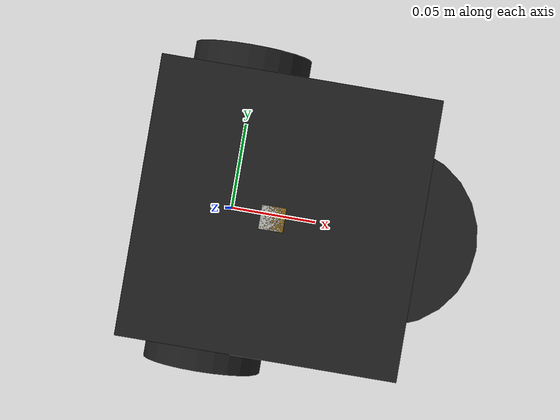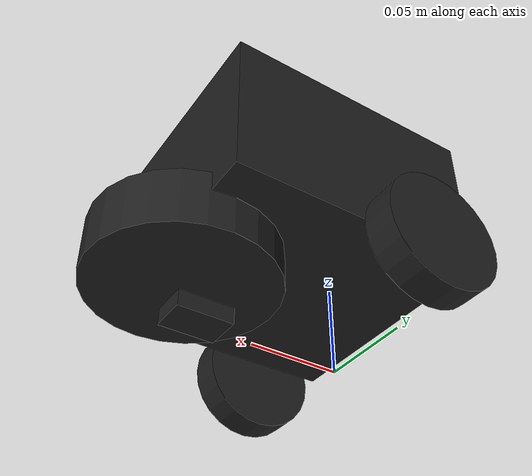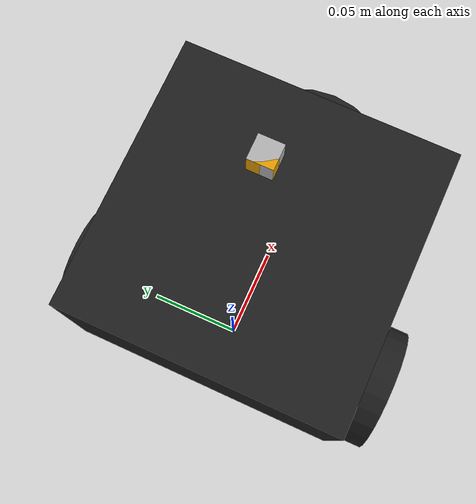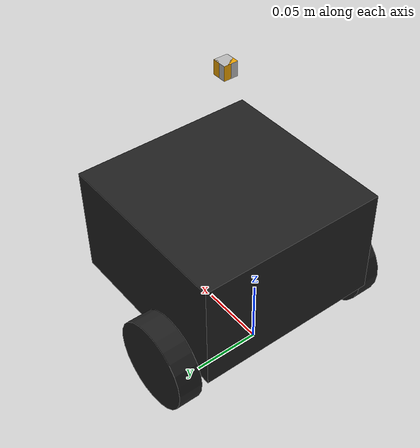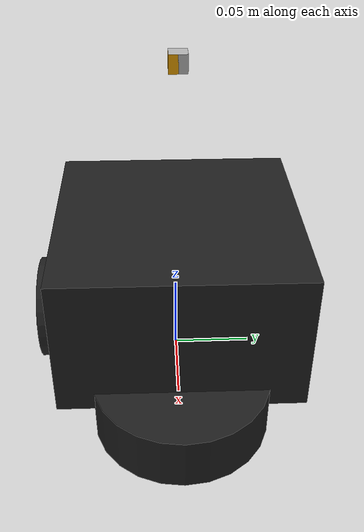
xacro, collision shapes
<?xml version="1.0" ?>
<robot name="turtlebot3_burger" xmlns:xacro="http://ros.org/wiki/xacro">
  <xacro:include filename="$(find turtlebot3_description)/urdf/common_properties.xacro"/>
  <xacro:include filename="$(find turtlebot3_description)/urdf/turtlebot3_burger.gazebo.xacro"/>

  <link name="base_footprint"/>

  <joint name="base_joint" type="fixed">
    <parent link="base_footprint"/>
    <child link="base_link"/>
    <origin xyz="0.0 0.0 0.010" rpy="0 0 -3.14159"/>
  </joint>

  <link name="base_link">
    <visual>
      <origin xyz="-0.032 0 0.0" rpy="0 0 0"/>
      <geometry>
        <mesh filename="package://turtlebot3_description/meshes/bases/burger_base.stl" scale="0.001 0.001 0.001"/>
      </geometry>
      <material name="light_black"/>
    </visual>

    <collision>
      <origin xyz="-0.032 0 0.070" rpy="0 0 0"/>
      <geometry>
        <box size="0.140 0.140 0.083"/>
      </geometry>
    </collision>

    <inertial>
      <origin xyz="0 0 0" rpy="0 0 0"/>
      <mass value="8.2573504e-01"/>
      <inertia ixx="2.2124416e-03" ixy="-1.2294101e-05" ixz="3.4938785e-05"
               iyy="2.1193702e-03" iyz="-5.0120904e-06"
               izz="2.0064271e-03" />
    </inertial>
  </link>

  <joint name="wheel_right_joint" type="continuous">
    <parent link="base_link"/>
    <child link="wheel_left_link"/>
    <origin xyz="0.0 0.08 0.023" rpy="-1.57 0 -3.14159"/>
    <axis xyz="0 0 1"/>
  </joint>

  <link name="wheel_right_link">
    <visual>
      <origin xyz="0 0 0" rpy="1.57 0 0"/>
      <geometry>
        <mesh filename="package://turtlebot3_description/meshes/wheels/left_tire.stl" scale="0.001 0.001 0.001"/>
      </geometry>
      <material name="dark"/>
    </visual>

    <collision>
      <origin xyz="0 0 0" rpy="0 0 0"/>
      <geometry>
        <cylinder length="0.018" radius="0.033"/>
      </geometry>
    </collision>

    <inertial>
      <origin xyz="0 0 0" />
      <mass value="2.8498940e-02" />
      <inertia ixx="1.1175580e-05" ixy="-4.2369783e-11" ixz="-5.9381719e-09"
               iyy="1.1192413e-05" iyz="-1.4400107e-11"
               izz="2.0712558e-05" />
      </inertial>
  </link>

  <joint name="wheel_left_joint" type="continuous">
    <parent link="base_link"/>
    <child link="wheel_right_link"/>
    <origin xyz="0.0 -0.080 0.023" rpy="-1.57 0 -3.14159"/>
    <axis xyz="0 0 1"/>
  </joint>

  <link name="wheel_left_link">
    <visual>
      <origin xyz="0 0 0" rpy="1.57 0 0"/>
      <geometry>
        <mesh filename="package://turtlebot3_description/meshes/wheels/right_tire.stl" scale="0.001 0.001 0.001"/>
      </geometry>
      <material name="dark"/>
    </visual>

    <collision>
      <origin xyz="0 0 0" rpy="0 0 0"/>
      <geometry>
        <cylinder length="0.018" radius="0.033"/>
      </geometry>
    </collision>

    <inertial>
      <origin xyz="0 0 0" />
      <mass value="2.8498940e-02" />
      <inertia ixx="1.1175580e-05" ixy="-4.2369783e-11" ixz="-5.9381719e-09"
               iyy="1.1192413e-05" iyz="-1.4400107e-11"
               izz="2.0712558e-05" />
      </inertial>
  </link>

  <joint name="caster_back_joint" type="fixed">
    <parent link="base_link"/>
    <child link="caster_back_link"/>
    <origin xyz="-0.081 0 -0.004" rpy="-1.57 0 -3.14159"/>
  </joint>

  <link name="caster_back_link">
    <collision>
      <origin xyz="0 0.001 0" rpy="0 0 0"/>
      <geometry>
        <box size="0.030 0.009 0.020"/>
      </geometry>
    </collision>

    <inertial>
      <origin xyz="0 0 0" />
      <mass value="0.005" />
      <inertia ixx="0.001" ixy="0.0" ixz="0.0"
               iyy="0.001" iyz="0.0"
               izz="0.001" />
    </inertial>
  </link>

  <joint name="imu_joint" type="fixed">
    <parent link="base_link"/>
    <child link="imu_link"/>
    <origin xyz="-0.032 0 0.068" rpy="0 0 -3.14159"/>
  </joint>

  <link name="imu_link"/>

  <joint name="scan_joint" type="fixed">
    <parent link="base_link"/>
    <child link="base_scan"/>
    <origin xyz="-0.1 0 0.03" rpy="0 0 -3.14159"/>
  </joint>

  <link name="base_scan">
    <visual>
      <origin xyz="0 0 0.0" rpy="0 0 -3.14159"/>
      <geometry>
        <mesh filename="package://turtlebot3_description/meshes/sensors/lds.stl" scale="0.001 0.001 0.001"/>
      </geometry>
      <material name="dark"/>
    </visual>

    <collision>
      <origin xyz="-0.01 0 -0.0065" rpy="0 0 -3.14159"/>
      <geometry>
        <cylinder length="0.0315" radius="0.05"/>
      </geometry>
    </collision>

    <inertial>
      <mass value="0.114" />
      <origin xyz="0 0 0" />
      <inertia ixx="0.001" ixy="0.0" ixz="0.0"
               iyy="0.001" iyz="0.0"
               izz="0.001" />
    </inertial>
  </link>

  <joint name="camera_joint" type="fixed">
    <parent link="base_link"/>
    <child link="base_camera"/>
    <origin xyz="-0.032 0 0.2" rpy="0 0 4.7124"/>
  </joint>

  <link name="base_camera">
    <collision>
      <origin xyz="0 0 0" rpy="0 0 0"/>
      <geometry>
        <box size="0.01 0.01 0.01"/>
      </geometry>
    </collision>

    <inertial>
      <mass value="0.114" />
      <origin xyz="0 0 0" />
      <inertia ixx="0.001" ixy="0.0" ixz="0.0"
               iyy="0.001" iyz="0.0"
               izz="0.001" />
    </inertial>
  </link>

  <joint name="camera_joint2" type="fixed">
    <parent link="base_link"/>
    <child link="base_camera2"/>
    <origin xyz="-0.032 0 0.2" rpy="0 0 1.571"/>
  </joint>

  <link name="base_camera2">
    <collision>
      <origin xyz="0 0 0" rpy="0 0 0"/>
      <geometry>
        <box size="0.01 0.01 0.01"/>
      </geometry>
    </collision>

    <inertial>
      <mass value="0.114" />
      <origin xyz="0 0 0" />
      <inertia ixx="0.001" ixy="0.0" ixz="0.0"
               iyy="0.001" iyz="0.0"
               izz="0.001" />
    </inertial>
  </link>

</robot>
